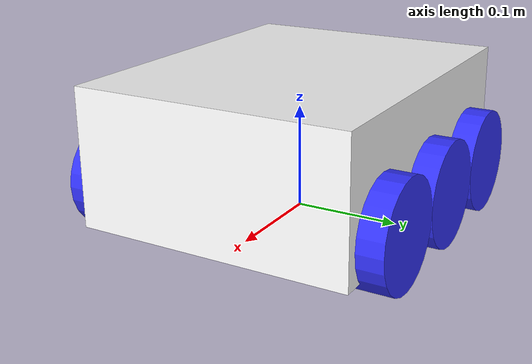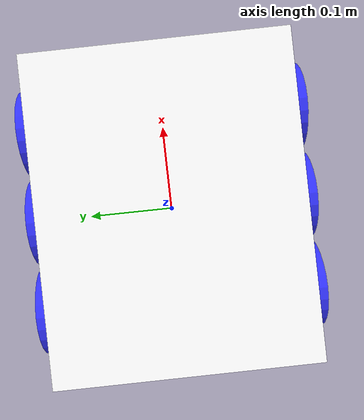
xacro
<?xml version="1.0"?>
<robot xmlns:xacro="http://www.ros.org/wiki/xacro" >

    <xacro:include filename="inertial_macros.xacro"/>

    <material name="white">
        <color rgba="1 1 1 1" />
    </material>

    <material name="orange">
        <color rgba="1 0.3 0.1 1"/>
    </material>

    <material name="blue">
        <color rgba="0.2 0.2 1 1"/>
    </material>

    <material name="black">
        <color rgba="0 0 0 1"/>
    </material>

    <!-- BASE LINK -->

    <link name="base_link">

    </link>

    <!-- BASE_FOOTPRINT LINK -->

    <joint name="base_footprint_joint" type="fixed">
        <parent link="base_link"/>
        <child link="base_footprint"/>
        <origin xyz="0 0 0" rpy="0 0 0"/>
    </joint>

    <link name="base_footprint">
    </link>

    <!-- CHASSIS LINK -->

    <joint name="chassis_joint" type="fixed">
        <parent link="base_link"/>
        <child link="chassis"/>
        <origin xyz="-0.16 0 0"/>
    </joint>

    <link name="chassis">
        <visual>
            <origin xyz="0.16 0 0.075"/>
            <geometry>
                <box size="0.32 0.26 0.13"/>
            </geometry>
            <material name="white"/>
        </visual>
        <collision>
            <origin xyz="0.16 0 0.075"/>
            <geometry>
                <box size="0.32 0.26 0.13"/>
            </geometry>
        </collision>
        <xacro:inertial_box mass="0.5" x="0.32" y="0.26" z="0.13">
            <origin xyz="0.16 0 0.075" rpy="0 0 0"/>
        </xacro:inertial_box>
    </link>

    <gazebo reference="chassis">
        <material>Gazebo/Orange</material>
    </gazebo>

    <!-- LEFT WHEEL LINK -->

    <joint name="left_wheel_joint" type="continuous">
        <parent link="base_link"/>
        <child link="left_wheel"/>
        <origin xyz="0 0.134 0.04" rpy="-${pi/2} 0 0" />
        <axis xyz="0 0 1"/>
    </joint>

    <link name="left_wheel">
        <visual>
            <geometry>
                <cylinder radius="0.05" length="0.04"/>
            </geometry>
            <material name="blue"/>
        </visual>
        <collision>
            <geometry>
                <cylinder radius="0.05" length="0.04"/>
            </geometry>
        </collision>
        <xacro:inertial_cylinder mass="0.1" length="0.04" radius="0.05">
            <origin xyz="0 0 0" rpy="0 0 0"/>
        </xacro:inertial_cylinder>
    </link>

    <gazebo reference="left_wheel">
        <material>Gazebo/Black</material>
    </gazebo>

    <!-- LEFT WHEEL LINK2 -->

    <joint name="left_wheel_joint2" type="continuous">
        <parent link="base_link"/>
        <child link="left_wheel2"/>
        <origin xyz="0.1 0.134 0.04" rpy="-${pi/2} 0 0" />
        <axis xyz="0 0 1"/>
    </joint>

    <link name="left_wheel2">
        <visual>
            <geometry>
                <cylinder radius="0.05" length="0.04"/>
            </geometry>
            <material name="blue"/>
        </visual>
        <collision>
            <geometry>
                <cylinder radius="0.05" length="0.04"/>
            </geometry>
        </collision>
        <xacro:inertial_cylinder mass="0.1" length="0.04" radius="0.05">
            <origin xyz="0 0 0" rpy="0 0 0"/>
        </xacro:inertial_cylinder>
    </link>

    <gazebo reference="left_wheel2">
        <material>Gazebo/Black</material>
        <mu1 value="0"/>
        <mu2 value="0"/>
    </gazebo>

    <!-- LEFT WHEEL LINK3 -->

    <joint name="left_wheel_joint3" type="continuous">
        <parent link="base_link"/>
        <child link="left_wheel3"/>
        <origin xyz="-0.1 0.134 0.04" rpy="-${pi/2} 0 0" />
        <axis xyz="0 0 1"/>
    </joint>

    <link name="left_wheel3">
        <visual>
            <geometry>
                <cylinder radius="0.05" length="0.04"/>
            </geometry>
            <material name="blue"/>
        </visual>
        <collision>
            <geometry>
                <cylinder radius="0.05" length="0.04"/>
            </geometry>
        </collision>
        <xacro:inertial_cylinder mass="0.1" length="0.04" radius="0.05">
            <origin xyz="0 0 0" rpy="0 0 0"/>
        </xacro:inertial_cylinder>
    </link>

    <gazebo reference="left_wheel3">
        <material>Gazebo/Black</material>
        <mu1 value="0"/>
        <mu2 value="0"/>
    </gazebo>

    <!-- RIGHT WHEEL LINK -->

    <joint name="right_wheel_joint" type="continuous">
        <parent link="base_link"/>
        <child link="right_wheel"/>
        <origin xyz="0 -0.134 0.04" rpy="${pi/2} 0 0" />
        <axis xyz="0 0 -1"/>
    </joint>

    <link name="right_wheel">
        <visual>
            <geometry>
                <cylinder radius="0.05" length="0.04"/>
            </geometry>
            <material name="blue"/>
        </visual>
        <collision>
            <geometry>
                <cylinder radius="0.05" length="0.04"/>
            </geometry>
        </collision>
        <xacro:inertial_cylinder mass="0.1" length="0.04" radius="0.05">
            <origin xyz="0 0 0" rpy="0 0 0"/>
        </xacro:inertial_cylinder>
    </link>

    <gazebo reference="right_wheel">
        <material>Gazebo/Black</material>
    </gazebo>

    <!-- RIGHT WHEEL LINK2 -->

    <joint name="right_wheel_joint2" type="continuous">
        <parent link="base_link"/>
        <child link="right_wheel2"/>
        <origin xyz="0.1 -0.134 0.04" rpy="-${pi/2} 0 0" />
        <axis xyz="0 0 1"/>
    </joint>

    <link name="right_wheel2">
        <visual>
            <geometry>
                <cylinder radius="0.05" length="0.04"/>
            </geometry>
            <material name="blue"/>
        </visual>
        <collision>
            <geometry>
                <cylinder radius="0.05" length="0.04"/>
            </geometry>
        </collision>
        <xacro:inertial_cylinder mass="0.1" length="0.04" radius="0.05">
            <origin xyz="0 0 0" rpy="0 0 0"/>
        </xacro:inertial_cylinder>
    </link>

    <gazebo reference="right_wheel2">
        <material>Gazebo/Black</material>
        <mu1 value="0"/>
        <mu2 value="0"/>
    </gazebo>

        <!-- RIGHT WHEEL LINK3 -->

    <joint name="right_wheel_joint3" type="continuous">
        <parent link="base_link"/>
        <child link="right_wheel3"/>
        <origin xyz="-0.1 -0.134 0.04" rpy="-${pi/2} 0 0" />
        <axis xyz="0 0 1"/>
    </joint>

    <link name="right_wheel3">
        <visual>
            <geometry>
                <cylinder radius="0.05" length="0.04"/>
            </geometry>
            <material name="blue"/>
        </visual>
        <collision>
            <geometry>
                <cylinder radius="0.05" length="0.04"/>
            </geometry>
        </collision>
        <xacro:inertial_cylinder mass="0.1" length="0.04" radius="0.05">
            <origin xyz="0 0 0" rpy="0 0 0"/>
        </xacro:inertial_cylinder>
    </link>

    <gazebo reference="right_wheel3">
        <material>Gazebo/Black</material>
        <mu1 value="0"/>
        <mu2 value="0"/>
    </gazebo>

</robot>
